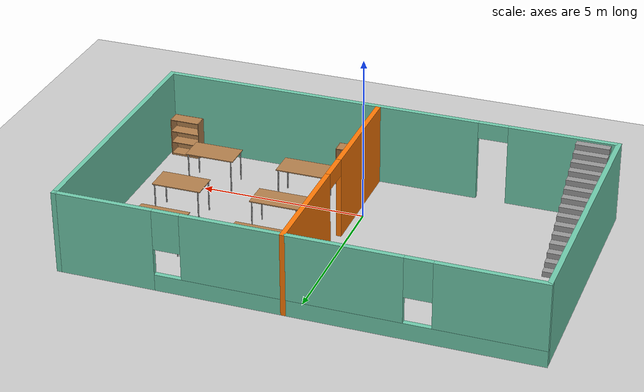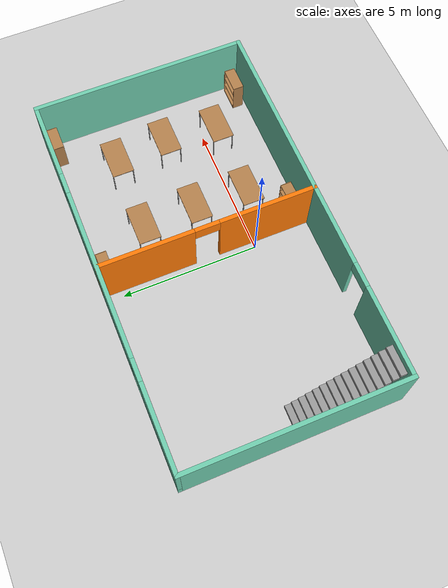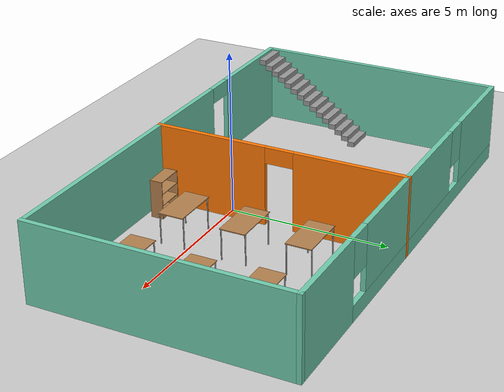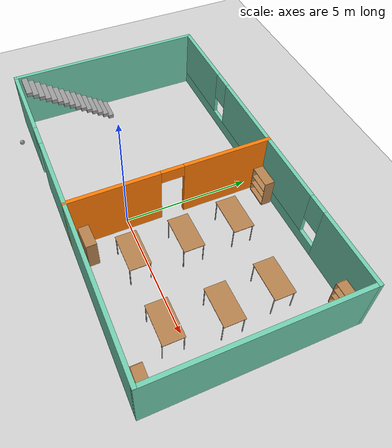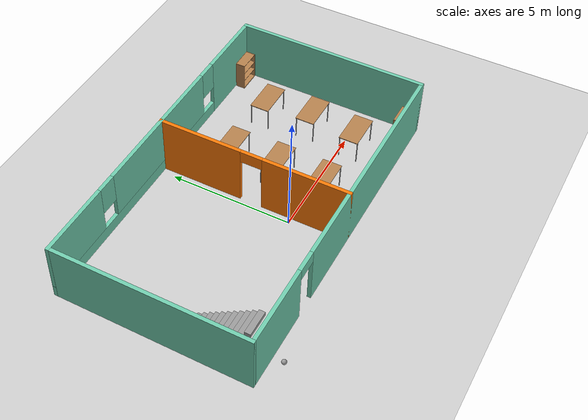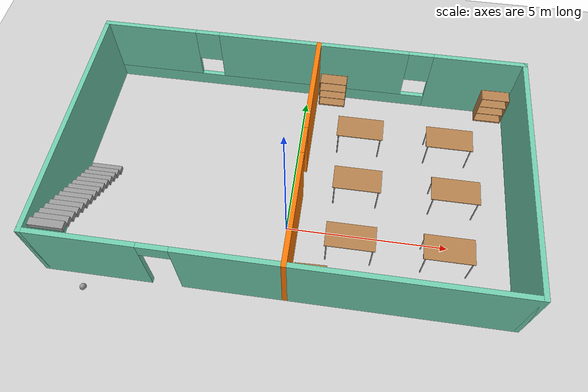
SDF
<sdf version="1.6">
 <world name="default">
  <light name="sun" type="directional">
   <pose>0 0 10 0 -0 0</pose>
   <diffuse>0.8 0.8 0.8 1</diffuse>
   <specular>0.2 0.2 0.2 1</specular>
   <attenuation>
    <range>1000</range>
    <constant>0.9</constant>
    <linear>0.01</linear>
    <quadratic>0.001</quadratic>
   </attenuation>
   <direction>-0.5 0.1 -0.9</direction>
  </light>
  <model name="ground_plane">
   <static>1</static>
   <link name="link">
    <collision name="collision">
     <geometry><plane><normal>0 0 1</normal><size>100 100</size></plane></geometry>
     <surface><friction><ode><mu>100</mu><mu2>50</mu2></ode></friction></surface>
    </collision>
    <visual name="visual">
     <cast_shadows>0</cast_shadows>
     <geometry><plane><normal>0 0 1</normal><size>100 100</size></plane></geometry>
     <material>
      <script><uri>file://media/materials/scripts/gazebo.material</uri><name>Gazebo/Grey</name></script>
     </material>
    </visual>
   </link>
  </model>
  <gravity>0 0 -9.8</gravity>
  <magnetic_field>6e-06 2.3e-05 -4.2e-05</magnetic_field>
  <atmosphere type="adiabatic"/>
  <physics name="default_physics" default="0" type="ode">
   <max_step_size>0.001</max_step_size>
   <real_time_factor>1</real_time_factor>
   <real_time_update_rate>1000</real_time_update_rate>
  </physics>
  <scene><ambient>0.4 0.4 0.4 1</ambient><background>0.7 0.7 0.7 1</background><shadows>1</shadows></scene>
  <audio><device>default</device></audio>
  <spherical_coordinates>
   <surface_model>EARTH_WGS84</surface_model>
   <latitude_deg>0</latitude_deg>
   <longitude_deg>0</longitude_deg>
   <elevation>0</elevation>
   <heading_deg>0</heading_deg>
  </spherical_coordinates>
  <model name="my_small_house">
   <pose>0.022588 1.69125 0 0 -0 0</pose>
   <link name="Stairs_0">
    <visual name="Stairs_0_Visual_0">
     <pose>-6.25421 -0.363102 0.083333 0 -0 0</pose>
     <geometry><box><size>1 0.233333 0.166667</size></box></geometry>
     <material>
      <script><uri>file://media/materials/scripts/gazebo.material</uri><name>Gazebo/Grey</name></script>
      <ambient>1 1 1 1</ambient>
     </material>
     <meta><layer>0</layer></meta>
    </visual>
    <collision name="Stairs_0_Collision_0">
     <geometry><box><size>1 0.233333 0.166667</size></box></geometry>
     <pose>-6.25421 -0.363102 0.083333 0 -0 0</pose>
    </collision>
    <visual name="Stairs_0_Visual_1">
     <pose>-6.25421 -0.596436 0.25 0 -0 0</pose>
     <geometry><box><size>1 0.233333 0.166667</size></box></geometry>
     <material>
      <script><uri>file://media/materials/scripts/gazebo.material</uri><name>Gazebo/Grey</name></script>
      <ambient>1 1 1 1</ambient>
     </material>
     <meta><layer>0</layer></meta>
    </visual>
    <collision name="Stairs_0_Collision_1">
     <geometry><box><size>1 0.233333 0.166667</size></box></geometry>
     <pose>-6.25421 -0.596436 0.25 0 -0 0</pose>
    </collision>
    <visual name="Stairs_0_Visual_2">
     <pose>-6.25421 -0.829769 0.416667 0 -0 0</pose>
     <geometry><box><size>1 0.233333 0.166667</size></box></geometry>
     <material>
      <script><uri>file://media/materials/scripts/gazebo.material</uri><name>Gazebo/Grey</name></script>
      <ambient>1 1 1 1</ambient>
     </material>
     <meta><layer>0</layer></meta>
    </visual>
    <collision name="Stairs_0_Collision_2">
     <geometry><box><size>1 0.233333 0.166667</size></box></geometry>
     <pose>-6.25421 -0.829769 0.416667 0 -0 0</pose>
    </collision>
    <visual name="Stairs_0_Visual_3">
     <pose>-6.25421 -1.0631 0.583333 0 -0 0</pose>
     <geometry><box><size>1 0.233333 0.166667</size></box></geometry>
     <material>
      <script><uri>file://media/materials/scripts/gazebo.material</uri><name>Gazebo/Grey</name></script>
      <ambient>1 1 1 1</ambient>
     </material>
     <meta><layer>0</layer></meta>
    </visual>
    <collision name="Stairs_0_Collision_3">
     <geometry><box><size>1 0.233333 0.166667</size></box></geometry>
     <pose>-6.25421 -1.0631 0.583333 0 -0 0</pose>
    </collision>
    <visual name="Stairs_0_Visual_4">
     <pose>-6.25421 -1.29644 0.75 0 -0 0</pose>
     <geometry><box><size>1 0.233333 0.166667</size></box></geometry>
     <material>
      <script><uri>file://media/materials/scripts/gazebo.material</uri><name>Gazebo/Grey</name></script>
      <ambient>1 1 1 1</ambient>
     </material>
     <meta><layer>0</layer></meta>
    </visual>
    <collision name="Stairs_0_Collision_4">
     <geometry><box><size>1 0.233333 0.166667</size></box></geometry>
     <pose>-6.25421 -1.29644 0.75 0 -0 0</pose>
    </collision>
    <visual name="Stairs_0_Visual_5">
     <pose>-6.25421 -1.52977 0.916667 0 -0 0</pose>
     <geometry><box><size>1 0.233333 0.166667</size></box></geometry>
     <material>
      <script><uri>file://media/materials/scripts/gazebo.material</uri><name>Gazebo/Grey</name></script>
      <ambient>1 1 1 1</ambient>
     </material>
     <meta><layer>0</layer></meta>
    </visual>
    <collision name="Stairs_0_Collision_5">
     <geometry><box><size>1 0.233333 0.166667</size></box></geometry>
     <pose>-6.25421 -1.52977 0.916667 0 -0 0</pose>
    </collision>
    <visual name="Stairs_0_Visual_6">
     <pose>-6.25421 -1.7631 1.08333 0 -0 0</pose>
     <geometry><box><size>1 0.233333 0.166667</size></box></geometry>
     <material>
      <script><uri>file://media/materials/scripts/gazebo.material</uri><name>Gazebo/Grey</name></script>
      <ambient>1 1 1 1</ambient>
     </material>
     <meta><layer>0</layer></meta>
    </visual>
    <collision name="Stairs_0_Collision_6">
     <geometry><box><size>1 0.233333 0.166667</size></box></geometry>
     <pose>-6.25421 -1.7631 1.08333 0 -0 0</pose>
    </collision>
    <visual name="Stairs_0_Visual_7">
     <pose>-6.25421 -1.99644 1.25 0 -0 0</pose>
     <geometry><box><size>1 0.233333 0.166667</size></box></geometry>
     <material>
      <script><uri>file://media/materials/scripts/gazebo.material</uri><name>Gazebo/Grey</name></script>
      <ambient>1 1 1 1</ambient>
     </material>
     <meta><layer>0</layer></meta>
    </visual>
    <collision name="Stairs_0_Collision_7">
     <geometry><box><size>1 0.233333 0.166667</size></box></geometry>
     <pose>-6.25421 -1.99644 1.25 0 -0 0</pose>
    </collision>
    <visual name="Stairs_0_Visual_8">
     <pose>-6.25421 -2.22977 1.41667 0 -0 0</pose>
     <geometry><box><size>1 0.233333 0.166667</size></box></geometry>
     <material>
      <script><uri>file://media/materials/scripts/gazebo.material</uri><name>Gazebo/Grey</name></script>
      <ambient>1 1 1 1</ambient>
     </material>
     <meta><layer>0</layer></meta>
    </visual>
    <collision name="Stairs_0_Collision_8">
     <geometry><box><size>1 0.233333 0.166667</size></box></geometry>
     <pose>-6.25421 -2.22977 1.41667 0 -0 0</pose>
    </collision>
    <visual name="Stairs_0_Visual_9">
     <pose>-6.25421 -2.4631 1.58333 0 -0 0</pose>
     <geometry><box><size>1 0.233333 0.166667</size></box></geometry>
     <material>
      <script><uri>file://media/materials/scripts/gazebo.material</uri><name>Gazebo/Grey</name></script>
      <ambient>1 1 1 1</ambient>
     </material>
     <meta><layer>0</layer></meta>
    </visual>
    <collision name="Stairs_0_Collision_9">
     <geometry><box><size>1 0.233333 0.166667</size></box></geometry>
     <pose>-6.25421 -2.4631 1.58333 0 -0 0</pose>
    </collision>
    <visual name="Stairs_0_Visual_10">
     <pose>-6.25421 -2.69644 1.75 0 -0 0</pose>
     <geometry><box><size>1 0.233333 0.166667</size></box></geometry>
     <material>
      <script><uri>file://media/materials/scripts/gazebo.material</uri><name>Gazebo/Grey</name></script>
      <ambient>1 1 1 1</ambient>
     </material>
     <meta><layer>0</layer></meta>
    </visual>
    <collision name="Stairs_0_Collision_10">
     <geometry><box><size>1 0.233333 0.166667</size></box></geometry>
     <pose>-6.25421 -2.69644 1.75 0 -0 0</pose>
    </collision>
    <visual name="Stairs_0_Visual_11">
     <pose>-6.25421 -2.92977 1.91667 0 -0 0</pose>
     <geometry><box><size>1 0.233333 0.166667</size></box></geometry>
     <material>
      <script><uri>file://media/materials/scripts/gazebo.material</uri><name>Gazebo/Grey</name></script>
      <ambient>1 1 1 1</ambient>
     </material>
     <meta><layer>0</layer></meta>
    </visual>
    <collision name="Stairs_0_Collision_11">
     <geometry><box><size>1 0.233333 0.166667</size></box></geometry>
     <pose>-6.25421 -2.92977 1.91667 0 -0 0</pose>
    </collision>
    <visual name="Stairs_0_Visual_12">
     <pose>-6.25421 -3.1631 2.08333 0 -0 0</pose>
     <geometry><box><size>1 0.233333 0.166667</size></box></geometry>
     <material>
      <script><uri>file://media/materials/scripts/gazebo.material</uri><name>Gazebo/Grey</name></script>
      <ambient>1 1 1 1</ambient>
     </material>
     <meta><layer>0</layer></meta>
    </visual>
    <collision name="Stairs_0_Collision_12">
     <geometry><box><size>1 0.233333 0.166667</size></box></geometry>
     <pose>-6.25421 -3.1631 2.08333 0 -0 0</pose>
    </collision>
    <visual name="Stairs_0_Visual_13">
     <pose>-6.25421 -3.39643 2.25 0 -0 0</pose>
     <geometry><box><size>1 0.233333 0.166667</size></box></geometry>
     <material>
      <script><uri>file://media/materials/scripts/gazebo.material</uri><name>Gazebo/Grey</name></script>
      <ambient>1 1 1 1</ambient>
     </material>
     <meta><layer>0</layer></meta>
    </visual>
    <collision name="Stairs_0_Collision_13">
     <geometry><box><size>1 0.233333 0.166667</size></box></geometry>
     <pose>-6.25421 -3.39643 2.25 0 -0 0</pose>
    </collision>
    <visual name="Stairs_0_Visual_14">
     <pose>-6.25421 -3.62977 2.41667 0 -0 0</pose>
     <geometry><box><size>1 0.233333 0.166667</size></box></geometry>
     <material>
      <script><uri>file://media/materials/scripts/gazebo.material</uri><name>Gazebo/Grey</name></script>
      <ambient>1 1 1 1</ambient>
     </material>
     <meta><layer>0</layer></meta>
    </visual>
    <collision name="Stairs_0_Collision_14">
     <geometry><box><size>1 0.233333 0.166667</size></box></geometry>
     <pose>-6.25421 -3.62977 2.41667 0 -0 0</pose>
    </collision>
   </link>
   <link name="Wall_0">
    <collision name="Wall_0_Collision">
     <geometry><box><size>8 0.15 2.5</size></box></geometry>
     <pose>0 0 1.25 0 -0 0</pose>
    </collision>
    <visual name="Wall_0_Visual">
     <pose>0 0 1.25 0 -0 0</pose>
     <geometry><box><size>8 0.15 2.5</size></box></geometry>
     <material>
      <script><uri>file://media/materials/scripts/gazebo.material</uri><name>Gazebo/Grey</name></script>
      <ambient>0.435294 0.796078 0.67451 1</ambient>
     </material>
     <meta><layer>0</layer></meta>
    </visual>
    <pose>-6.925 0 0 0 -0 -1.5708</pose>
   </link>
   <link name="Wall_1">
    <pose>0 -3.925 0 0 -0 0</pose>
    <visual name="Wall_1_Visual_0">
     <pose>-5.34862 0 1.25 0 -0 0</pose>
     <geometry><box><size>3.30277 0.15 2.5</size></box></geometry>
     <material>
      <script><uri>file://media/materials/scripts/gazebo.material</uri><name>Gazebo/Grey</name></script>
      <ambient>0.435294 0.796078 0.67451 1</ambient>
     </material>
     <meta><layer>0</layer></meta>
    </visual>
    <collision name="Wall_1_Collision_0">
     <geometry><box><size>3.30277 0.15 2.5</size></box></geometry>
     <pose>-5.34862 0 1.25 0 -0 0</pose>
    </collision>
    <visual name="Wall_1_Visual_1">
     <pose>2.10138 0 1.25 0 -0 0</pose>
     <geometry><box><size>9.79723 0.15 2.5</size></box></geometry>
     <material>
      <script><uri>file://media/materials/scripts/gazebo.material</uri><name>Gazebo/Grey</name></script>
      <ambient>0.435294 0.796078 0.67451 1</ambient>
     </material>
     <meta><layer>0</layer></meta>
    </visual>
    <collision name="Wall_1_Collision_1">
     <geometry><box><size>9.79723 0.15 2.5</size></box></geometry>
     <pose>2.10138 0 1.25 0 -0 0</pose>
    </collision>
    <visual name="Wall_1_Visual_2">
     <pose>-3.24723 0 2.25 0 -0 0</pose>
     <geometry><box><size>0.9 0.15 0.5</size></box></geometry>
     <material>
      <script><uri>file://media/materials/scripts/gazebo.material</uri><name>Gazebo/Grey</name></script>
      <ambient>0.435294 0.796078 0.67451 1</ambient>
     </material>
     <meta><layer>0</layer></meta>
    </visual>
    <collision name="Wall_1_Collision_2">
     <geometry><box><size>0.9 0.15 0.5</size></box></geometry>
     <pose>-3.24723 0 2.25 0 -0 0</pose>
    </collision>
   </link>
   <link name="Wall_2">
    <collision name="Wall_2_Collision">
     <geometry><box><size>8 0.15 2.5</size></box></geometry>
     <pose>0 0 1.25 0 -0 0</pose>
    </collision>
    <visual name="Wall_2_Visual">
     <pose>0 0 1.25 0 -0 0</pose>
     <geometry><box><size>8 0.15 2.5</size></box></geometry>
     <material>
      <script><uri>file://media/materials/scripts/gazebo.material</uri><name>Gazebo/Grey</name></script>
      <ambient>0.435294 0.796078 0.67451 1</ambient>
     </material>
     <meta><layer>0</layer></meta>
    </visual>
    <pose>6.925 0 0 0 -0 1.5708</pose>
   </link>
   <link name="Wall_3">
    <pose>0 3.925 0 0 -0 3.14159</pose>
    <visual name="Wall_3_Visual_0">
     <pose>-5.51128 0 1.25 0 -0 0</pose>
     <geometry><box><size>2.97744 0.15 2.5</size></box></geometry>
     <material>
      <script><uri>file://media/materials/scripts/gazebo.material</uri><name>Gazebo/Grey</name></script>
      <ambient>0.435294 0.796078 0.67451 1</ambient>
     </material>
     <meta><layer>0</layer></meta>
    </visual>
    <collision name="Wall_3_Collision_0">
     <geometry><box><size>2.97744 0.15 2.5</size></box></geometry>
     <pose>-5.51128 0 1.25 0 -0 0</pose>
    </collision>
    <visual name="Wall_3_Visual_1">
     <pose>1.48872 0 0.25 0 -0 0</pose>
     <geometry><box><size>11.0226 0.15 0.5</size></box></geometry>
     <material>
      <script><uri>file://media/materials/scripts/gazebo.material</uri><name>Gazebo/Grey</name></script>
      <ambient>0.435294 0.796078 0.67451 1</ambient>
     </material>
     <meta><layer>0</layer></meta>
    </visual>
    <collision name="Wall_3_Collision_1">
     <geometry><box><size>11.0226 0.15 0.5</size></box></geometry>
     <pose>1.48872 0 0.25 0 -0 0</pose>
    </collision>
    <visual name="Wall_3_Visual_2">
     <pose>-0.072009 0 1.5 0 -0 0</pose>
     <geometry><box><size>6.3011 0.15 2</size></box></geometry>
     <material>
      <script><uri>file://media/materials/scripts/gazebo.material</uri><name>Gazebo/Grey</name></script>
      <ambient>0.435294 0.796078 0.67451 1</ambient>
     </material>
     <meta><layer>0</layer></meta>
    </visual>
    <collision name="Wall_3_Collision_2">
     <geometry><box><size>6.3011 0.15 2</size></box></geometry>
     <pose>-0.072009 0 1.5 0 -0 0</pose>
    </collision>
    <visual name="Wall_3_Visual_3">
     <pose>5.43927 0 1.5 0 -0 0</pose>
     <geometry><box><size>3.12146 0.15 2</size></box></geometry>
     <material>
      <script><uri>file://media/materials/scripts/gazebo.material</uri><name>Gazebo/Grey</name></script>
      <ambient>0.435294 0.796078 0.67451 1</ambient>
     </material>
     <meta><layer>0</layer></meta>
    </visual>
    <collision name="Wall_3_Collision_3">
     <geometry><box><size>3.12146 0.15 2</size></box></geometry>
     <pose>5.43927 0 1.5 0 -0 0</pose>
    </collision>
    <visual name="Wall_3_Visual_4">
     <pose>-3.62256 0 1.9 0 -0 0</pose>
     <geometry><box><size>0.8 0.15 1.2</size></box></geometry>
     <material>
      <script><uri>file://media/materials/scripts/gazebo.material</uri><name>Gazebo/Grey</name></script>
      <ambient>0.435294 0.796078 0.67451 1</ambient>
     </material>
     <meta><layer>0</layer></meta>
    </visual>
    <collision name="Wall_3_Collision_4">
     <geometry><box><size>0.8 0.15 1.2</size></box></geometry>
     <pose>-3.62256 0 1.9 0 -0 0</pose>
    </collision>
    <visual name="Wall_3_Visual_5">
     <pose>3.47854 0 1.9 0 -0 0</pose>
     <geometry><box><size>0.8 0.15 1.2</size></box></geometry>
     <material>
      <script><uri>file://media/materials/scripts/gazebo.material</uri><name>Gazebo/Grey</name></script>
      <ambient>0.435294 0.796078 0.67451 1</ambient>
     </material>
     <meta><layer>0</layer></meta>
    </visual>
    <collision name="Wall_3_Collision_5">
     <geometry><box><size>0.8 0.15 1.2</size></box></geometry>
     <pose>3.47854 0 1.9 0 -0 0</pose>
    </collision>
   </link>
   <link name="Wall_5">
    <pose>0.268619 0 0 0 -0 -1.5708</pose>
    <visual name="Wall_5_Visual_0">
     <pose>-2.24453 0 1.25 0 -0 0</pose>
     <geometry><box><size>3.51094 0.15 2.5</size></box></geometry>
     <material>
      <script><uri>file://media/materials/scripts/gazebo.material</uri><name>Gazebo/Grey</name></script>
      <ambient>0.996078 0.47451 0.0196078 1</ambient>
     </material>
     <meta><layer>0</layer></meta>
    </visual>
    <collision name="Wall_5_Collision_0">
     <geometry><box><size>3.51094 0.15 2.5</size></box></geometry>
     <pose>-2.24453 0 1.25 0 -0 0</pose>
    </collision>
    <visual name="Wall_5_Visual_1">
     <pose>2.20547 0 1.25 0 -0 0</pose>
     <geometry><box><size>3.58906 0.15 2.5</size></box></geometry>
     <material>
      <script><uri>file://media/materials/scripts/gazebo.material</uri><name>Gazebo/Grey</name></script>
      <ambient>0.996078 0.47451 0.0196078 1</ambient>
     </material>
     <meta><layer>0</layer></meta>
    </visual>
    <collision name="Wall_5_Collision_1">
     <geometry><box><size>3.58906 0.15 2.5</size></box></geometry>
     <pose>2.20547 0 1.25 0 -0 0</pose>
    </collision>
    <visual name="Wall_5_Visual_2">
     <pose>-0.039058 0 2.25 0 -0 0</pose>
     <geometry><box><size>0.9 0.15 0.5</size></box></geometry>
     <material>
      <script><uri>file://media/materials/scripts/gazebo.material</uri><name>Gazebo/Grey</name></script>
      <ambient>0.996078 0.47451 0.0196078 1</ambient>
     </material>
     <meta><layer>0</layer></meta>
    </visual>
    <collision name="Wall_5_Collision_2">
     <geometry><box><size>0.9 0.15 0.5</size></box></geometry>
     <pose>-0.039058 0 2.25 0 -0 0</pose>
    </collision>
   </link>
   <static>1</static>
  </model>
  <model name="room2">
   <model name="bookshelf">
    <static>1</static>
    <link name="link">
     <inertial><mass>1</mass></inertial>
     <collision name="back">
      <pose>0 0.005 0.6 0 -0 0</pose>
      <geometry><box><size>0.9 0.01 1.2</size></box></geometry>
     </collision>
     <visual name="visual1">
      <pose>0 0.005 0.6 0 -0 0</pose>
      <geometry><box><size>0.9 0.01 1.2</size></box></geometry>
      <material>
       <script><uri>file://media/materials/scripts/gazebo.material</uri><name>Gazebo/Wood</name></script>
      </material>
     </visual>
     <collision name="left_side">
      <pose>0.45 -0.195 0.6 0 -0 0</pose>
      <geometry><box><size>0.02 0.4 1.2</size></box></geometry>
     </collision>
     <visual name="visual2">
      <pose>0.45 -0.195 0.6 0 -0 0</pose>
      <geometry><box><size>0.02 0.4 1.2</size></box></geometry>
      <material>
       <script><uri>file://media/materials/scripts/gazebo.material</uri><name>Gazebo/Wood</name></script>
      </material>
     </visual>
     <collision name="right_side">
      <pose>-0.45 -0.195 0.6 0 -0 0</pose>
      <geometry><box><size>0.02 0.4 1.2</size></box></geometry>
     </collision>
     <visual name="visual3">
      <pose>-0.45 -0.195 0.6 0 -0 0</pose>
      <geometry><box><size>0.02 0.4 1.2</size></box></geometry>
      <material>
       <script><uri>file://media/materials/scripts/gazebo.material</uri><name>Gazebo/Wood</name></script>
      </material>
     </visual>
     <collision name="bottom">
      <pose>0 -0.195 0.03 0 -0 0</pose>
      <geometry><box><size>0.88 0.4 0.06</size></box></geometry>
     </collision>
     <visual name="visual4">
      <pose>0 -0.195 0.03 0 -0 0</pose>
      <geometry><box><size>0.88 0.4 0.06</size></box></geometry>
      <material>
       <script><uri>file://media/materials/scripts/gazebo.material</uri><name>Gazebo/Wood</name></script>
      </material>
     </visual>
     <collision name="top">
      <pose>0 -0.195 1.19 0 -0 0</pose>
      <geometry><box><size>0.88 0.4 0.02</size></box></geometry>
     </collision>
     <visual name="visual5">
      <pose>0 -0.195 1.19 0 -0 0</pose>
      <geometry><box><size>0.88 0.4 0.02</size></box></geometry>
      <material>
       <script><uri>file://media/materials/scripts/gazebo.material</uri><name>Gazebo/Wood</name></script>
      </material>
     </visual>
     <collision name="low_shelf">
      <pose>0 -0.195 0.43 0 -0 0</pose>
      <geometry><box><size>0.88 0.4 0.02</size></box></geometry>
     </collision>
     <visual name="visual6">
      <pose>0 -0.195 0.43 0 -0 0</pose>
      <geometry><box><size>0.88 0.4 0.02</size></box></geometry>
      <material>
       <script><uri>file://media/materials/scripts/gazebo.material</uri><name>Gazebo/Wood</name></script>
      </material>
     </visual>
     <collision name="high_shelf">
      <pose>0 -0.195 0.8 0 -0 0</pose>
      <geometry><box><size>0.88 0.4 0.02</size></box></geometry>
     </collision>
     <visual name="visual7">
      <pose>0 -0.195 0.8 0 -0 0</pose>
      <geometry><box><size>0.88 0.4 0.02</size></box></geometry>
      <material>
       <script><uri>file://media/materials/scripts/gazebo.material</uri><name>Gazebo/Wood</name></script>
      </material>
     </visual>
    </link>
    <pose>2.83384 3.91449 -0.000271 0 -0 0</pose>
   </model>
   <model name="bookshelf_0">
    <static>1</static>
    <link name="link">
     <inertial><mass>1</mass></inertial>
     <collision name="back">
      <pose>0 0.005 0.6 0 -0 0</pose>
      <geometry><box><size>0.9 0.01 1.2</size></box></geometry>
     </collision>
     <visual name="visual1">
      <pose>0 0.005 0.6 0 -0 0</pose>
      <geometry><box><size>0.9 0.01 1.2</size></box></geometry>
      <material>
       <script><uri>file://media/materials/scripts/gazebo.material</uri><name>Gazebo/Wood</name></script>
      </material>
     </visual>
     <collision name="left_side">
      <pose>0.45 -0.195 0.6 0 -0 0</pose>
      <geometry><box><size>0.02 0.4 1.2</size></box></geometry>
     </collision>
     <visual name="visual2">
      <pose>0.45 -0.195 0.6 0 -0 0</pose>
      <geometry><box><size>0.02 0.4 1.2</size></box></geometry>
      <material>
       <script><uri>file://media/materials/scripts/gazebo.material</uri><name>Gazebo/Wood</name></script>
      </material>
     </visual>
     <collision name="right_side">
      <pose>-0.45 -0.195 0.6 0 -0 0</pose>
      <geometry><box><size>0.02 0.4 1.2</size></box></geometry>
     </collision>
     <visual name="visual3">
      <pose>-0.45 -0.195 0.6 0 -0 0</pose>
      <geometry><box><size>0.02 0.4 1.2</size></box></geometry>
      <material>
       <script><uri>file://media/materials/scripts/gazebo.material</uri><name>Gazebo/Wood</name></script>
      </material>
     </visual>
     <collision name="bottom">
      <pose>0 -0.195 0.03 0 -0 0</pose>
      <geometry><box><size>0.88 0.4 0.06</size></box></geometry>
     </collision>
     <visual name="visual4">
      <pose>0 -0.195 0.03 0 -0 0</pose>
      <geometry><box><size>0.88 0.4 0.06</size></box></geometry>
      <material>
       <script><uri>file://media/materials/scripts/gazebo.material</uri><name>Gazebo/Wood</name></script>
      </material>
     </visual>
     <collision name="top">
      <pose>0 -0.195 1.19 0 -0 0</pose>
      <geometry><box><size>0.88 0.4 0.02</size></box></geometry>
     </collision>
     <visual name="visual5">
      <pose>0 -0.195 1.19 0 -0 0</pose>
      <geometry><box><size>0.88 0.4 0.02</size></box></geometry>
      <material>
       <script><uri>file://media/materials/scripts/gazebo.material</uri><name>Gazebo/Wood</name></script>
      </material>
     </visual>
     <collision name="low_shelf">
      <pose>0 -0.195 0.43 0 -0 0</pose>
      <geometry><box><size>0.88 0.4 0.02</size></box></geometry>
     </collision>
     <visual name="visual6">
      <pose>0 -0.195 0.43 0 -0 0</pose>
      <geometry><box><size>0.88 0.4 0.02</size></box></geometry>
      <material>
       <script><uri>file://media/materials/scripts/gazebo.material</uri><name>Gazebo/Wood</name></script>
      </material>
     </visual>
     <collision name="high_shelf">
      <pose>0 -0.195 0.8 0 -0 0</pose>
      <geometry><box><size>0.88 0.4 0.02</size></box></geometry>
     </collision>
     <visual name="visual7">
      <pose>0 -0.195 0.8 0 -0 0</pose>
      <geometry><box><size>0.88 0.4 0.02</size></box></geometry>
      <material>
       <script><uri>file://media/materials/scripts/gazebo.material</uri><name>Gazebo/Wood</name></script>
      </material>
     </visual>
    </link>
    <pose>-2.64723 3.87983 -0.000271 0 -0 0</pose>
   </model>
   <model name="bookshelf_1">
    <static>1</static>
    <link name="link">
     <inertial><mass>1</mass></inertial>
     <collision name="back">
      <pose>0 0.005 0.6 0 -0 0</pose>
      <geometry><box><size>0.9 0.01 1.2</size></box></geometry>
     </collision>
     <visual name="visual1">
      <pose>0 0.005 0.6 0 -0 0</pose>
      <geometry><box><size>0.9 0.01 1.2</size></box></geometry>
      <material>
       <script><uri>file://media/materials/scripts/gazebo.material</uri><name>Gazebo/Wood</name></script>
      </material>
     </visual>
     <collision name="left_side">
      <pose>0.45 -0.195 0.6 0 -0 0</pose>
      <geometry><box><size>0.02 0.4 1.2</size></box></geometry>
     </collision>
     <visual name="visual2">
      <pose>0.45 -0.195 0.6 0 -0 0</pose>
      <geometry><box><size>0.02 0.4 1.2</size></box></geometry>
      <material>
       <script><uri>file://media/materials/scripts/gazebo.material</uri><name>Gazebo/Wood</name></script>
      </material>
     </visual>
     <collision name="right_side">
      <pose>-0.45 -0.195 0.6 0 -0 0</pose>
      <geometry><box><size>0.02 0.4 1.2</size></box></geometry>
     </collision>
     <visual name="visual3">
      <pose>-0.45 -0.195 0.6 0 -0 0</pose>
      <geometry><box><size>0.02 0.4 1.2</size></box></geometry>
      <material>
       <script><uri>file://media/materials/scripts/gazebo.material</uri><name>Gazebo/Wood</name></script>
      </material>
     </visual>
     <collision name="bottom">
      <pose>0 -0.195 0.03 0 -0 0</pose>
      <geometry><box><size>0.88 0.4 0.06</size></box></geometry>
     </collision>
     <visual name="visual4">
      <pose>0 -0.195 0.03 0 -0 0</pose>
      <geometry><box><size>0.88 0.4 0.06</size></box></geometry>
      <material>
       <script><uri>file://media/materials/scripts/gazebo.material</uri><name>Gazebo/Wood</name></script>
      </material>
     </visual>
     <collision name="top">
      <pose>0 -0.195 1.19 0 -0 0</pose>
      <geometry><box><size>0.88 0.4 0.02</size></box></geometry>
     </collision>
     <visual name="visual5">
      <pose>0 -0.195 1.19 0 -0 0</pose>
      <geometry><box><size>0.88 0.4 0.02</size></box></geometry>
      <material>
       <script><uri>file://media/materials/scripts/gazebo.material</uri><name>Gazebo/Wood</name></script>
      </material>
     </visual>
     <collision name="low_shelf">
      <pose>0 -0.195 0.43 0 -0 0</pose>
      <geometry><box><size>0.88 0.4 0.02</size></box></geometry>
     </collision>
     <visual name="visual6">
      <pose>0 -0.195 0.43 0 -0 0</pose>
      <geometry><box><size>0.88 0.4 0.02</size></box></geometry>
      <material>
       <script><uri>file://media/materials/scripts/gazebo.material</uri><name>Gazebo/Wood</name></script>
      </material>
     </visual>
     <collision name="high_shelf">
      <pose>0 -0.195 0.8 0 -0 0</pose>
      <geometry><box><size>0.88 0.4 0.02</size></box></geometry>
     </collision>
     <visual name="visual7">
      <pose>0 -0.195 0.8 0 -0 0</pose>
      <geometry><box><size>0.88 0.4 0.02</size></box></geometry>
      <material>
       <script><uri>file://media/materials/scripts/gazebo.material</uri><name>Gazebo/Wood</name></script>
      </material>
     </visual>
    </link>
    <pose>2.81028 -3.6314 -0.000271 0 -0 3.13704</pose>
   </model>
   <model name="bookshelf_2">
    <static>1</static>
    <link name="link">
     <inertial><mass>1</mass></inertial>
     <collision name="back">
      <pose>0 0.005 0.6 0 -0 0</pose>
      <geometry><box><size>0.9 0.01 1.2</size></box></geometry>
     </collision>
     <visual name="visual1">
      <pose>0 0.005 0.6 0 -0 0</pose>
      <geometry><box><size>0.9 0.01 1.2</size></box></geometry>
      <material>
       <script><uri>file://media/materials/scripts/gazebo.material</uri><name>Gazebo/Wood</name></script>
      </material>
     </visual>
     <collision name="left_side">
      <pose>0.45 -0.195 0.6 0 -0 0</pose>
      <geometry><box><size>0.02 0.4 1.2</size></box></geometry>
     </collision>
     <visual name="visual2">
      <pose>0.45 -0.195 0.6 0 -0 0</pose>
      <geometry><box><size>0.02 0.4 1.2</size></box></geometry>
      <material>
       <script><uri>file://media/materials/scripts/gazebo.material</uri><name>Gazebo/Wood</name></script>
      </material>
     </visual>
     <collision name="right_side">
      <pose>-0.45 -0.195 0.6 0 -0 0</pose>
      <geometry><box><size>0.02 0.4 1.2</size></box></geometry>
     </collision>
     <visual name="visual3">
      <pose>-0.45 -0.195 0.6 0 -0 0</pose>
      <geometry><box><size>0.02 0.4 1.2</size></box></geometry>
      <material>
       <script><uri>file://media/materials/scripts/gazebo.material</uri><name>Gazebo/Wood</name></script>
      </material>
     </visual>
     <collision name="bottom">
      <pose>0 -0.195 0.03 0 -0 0</pose>
      <geometry><box><size>0.88 0.4 0.06</size></box></geometry>
     </collision>
     <visual name="visual4">
      <pose>0 -0.195 0.03 0 -0 0</pose>
      <geometry><box><size>0.88 0.4 0.06</size></box></geometry>
      <material>
       <script><uri>file://media/materials/scripts/gazebo.material</uri><name>Gazebo/Wood</name></script>
      </material>
     </visual>
     <collision name="top">
      <pose>0 -0.195 1.19 0 -0 0</pose>
      <geometry><box><size>0.88 0.4 0.02</size></box></geometry>
     </collision>
     <visual name="visual5">
      <pose>0 -0.195 1.19 0 -0 0</pose>
      <geometry><box><size>0.88 0.4 0.02</size></box></geometry>
      <material>
       <script><uri>file://media/materials/scripts/gazebo.material</uri><name>Gazebo/Wood</name></script>
      </material>
     </visual>
     <collision name="low_shelf">
      <pose>0 -0.195 0.43 0 -0 0</pose>
      <geometry><box><size>0.88 0.4 0.02</size></box></geometry>
     </collision>
     <visual name="visual6">
      <pose>0 -0.195 0.43 0 -0 0</pose>
      <geometry><box><size>0.88 0.4 0.02</size></box></geometry>
      <material>
       <script><uri>file://media/materials/scripts/gazebo.material</uri><name>Gazebo/Wood</name></script>
      </material>
     </visual>
     <collision name="high_shelf">
      <pose>0 -0.195 0.8 0 -0 0</pose>
      <geometry><box><size>0.88 0.4 0.02</size></box></geometry>
     </collision>
     <visual name="visual7">
      <pose>0 -0.195 0.8 0 -0 0</pose>
      <geometry><box><size>0.88 0.4 0.02</size></box></geometry>
      <material>
       <script><uri>file://media/materials/scripts/gazebo.material</uri><name>Gazebo/Wood</name></script>
      </material>
     </visual>
    </link>
    <pose>-2.57339 -3.57221 0.002437 0 0 -3.11122</pose>
   </model>
   <model name="table">
    <static>1</static>
    <link name="link">
     <collision name="surface">
      <pose>0 0 1 0 -0 0</pose>
      <geometry><box><size>1.5 0.8 0.03</size></box></geometry>
      <surface><friction><ode><mu>0.6</mu><mu2>0.6</mu2></ode></friction></surface>
     </collision>
     <visual name="visual1">
      <pose>0 0 1 0 -0 0</pose>
      <geometry><box><size>1.5 0.8 0.03</size></box></geometry>
      <material>
       <script><uri>file://media/materials/scripts/gazebo.material</uri><name>Gazebo/Wood</name></script>
      </material>
     </visual>
     <collision name="front_left_leg">
      <pose>0.68 0.38 0.5 0 -0 0</pose>
      <geometry><cylinder><radius>0.02</radius><length>1</length></cylinder></geometry>
     </collision>
     <visual name="front_left_leg">
      <pose>0.68 0.38 0.5 0 -0 0</pose>
      <geometry><cylinder><radius>0.02</radius><length>1</length></cylinder></geometry>
      <material>
       <script><uri>file://media/materials/scripts/gazebo.material</uri><name>Gazebo/Grey</name></script>
      </material>
     </visual>
     <collision name="front_right_leg">
      <pose>0.68 -0.38 0.5 0 -0 0</pose>
      <geometry><cylinder><radius>0.02</radius><length>1</length></cylinder></geometry>
     </collision>
     <visual name="front_right_leg">
      <pose>0.68 -0.38 0.5 0 -0 0</pose>
      <geometry><cylinder><radius>0.02</radius><length>1</length></cylinder></geometry>
      <material>
       <script><uri>file://media/materials/scripts/gazebo.material</uri><name>Gazebo/Grey</name></script>
      </material>
     </visual>
     <collision name="back_right_leg">
      <pose>-0.68 -0.38 0.5 0 -0 0</pose>
      <geometry><cylinder><radius>0.02</radius><length>1</length></cylinder></geometry>
     </collision>
     <visual name="back_right_leg">
      <pose>-0.68 -0.38 0.5 0 -0 0</pose>
      <geometry><cylinder><radius>0.02</radius><length>1</length></cylinder></geometry>
      <material>
       <script><uri>file://media/materials/scripts/gazebo.material</uri><name>Gazebo/Grey</name></script>
      </material>
     </visual>
     <collision name="back_left_leg">
      <pose>-0.68 0.38 0.5 0 -0 0</pose>
      <geometry><cylinder><radius>0.02</radius><length>1</length></cylinder></geometry>
     </collision>
     <visual name="back_left_leg">
      <pose>-0.68 0.38 0.5 0 -0 0</pose>
      <geometry><cylinder><radius>0.02</radius><length>1</length></cylinder></geometry>
      <material>
       <script><uri>file://media/materials/scripts/gazebo.material</uri><name>Gazebo/Grey</name></script>
      </material>
     </visual>
    </link>
    <pose>1.32961 1.85544 -0.000271 0 -0 0</pose>
   </model>
   <model name="table_0">
    <static>1</static>
    <link name="link">
     <collision name="surface">
      <pose>0 0 1 0 -0 0</pose>
      <geometry><box><size>1.5 0.8 0.03</size></box></geometry>
      <surface><friction><ode><mu>0.6</mu><mu2>0.6</mu2></ode></friction></surface>
     </collision>
     <visual name="visual1">
      <pose>0 0 1 0 -0 0</pose>
      <geometry><box><size>1.5 0.8 0.03</size></box></geometry>
      <material>
       <script><uri>file://media/materials/scripts/gazebo.material</uri><name>Gazebo/Wood</name></script>
      </material>
     </visual>
     <collision name="front_left_leg">
      <pose>0.68 0.38 0.5 0 -0 0</pose>
      <geometry><cylinder><radius>0.02</radius><length>1</length></cylinder></geometry>
     </collision>
     <visual name="front_left_leg">
      <pose>0.68 0.38 0.5 0 -0 0</pose>
      <geometry><cylinder><radius>0.02</radius><length>1</length></cylinder></geometry>
      <material>
       <script><uri>file://media/materials/scripts/gazebo.material</uri><name>Gazebo/Grey</name></script>
      </material>
     </visual>
     <collision name="front_right_leg">
      <pose>0.68 -0.38 0.5 0 -0 0</pose>
      <geometry><cylinder><radius>0.02</radius><length>1</length></cylinder></geometry>
     </collision>
     <visual name="front_right_leg">
      <pose>0.68 -0.38 0.5 0 -0 0</pose>
      <geometry><cylinder><radius>0.02</radius><length>1</length></cylinder></geometry>
      <material>
       <script><uri>file://media/materials/scripts/gazebo.material</uri><name>Gazebo/Grey</name></script>
      </material>
     </visual>
     <collision name="back_right_leg">
      <pose>-0.68 -0.38 0.5 0 -0 0</pose>
      <geometry><cylinder><radius>0.02</radius><length>1</length></cylinder></geometry>
     </collision>
     <visual name="back_right_leg">
      <pose>-0.68 -0.38 0.5 0 -0 0</pose>
      <geometry><cylinder><radius>0.02</radius><length>1</length></cylinder></geometry>
      <material>
       <script><uri>file://media/materials/scripts/gazebo.material</uri><name>Gazebo/Grey</name></script>
      </material>
     </visual>
     <collision name="back_left_leg">
      <pose>-0.68 0.38 0.5 0 -0 0</pose>
      <geometry><cylinder><radius>0.02</radius><length>1</length></cylinder></geometry>
     </collision>
     <visual name="back_left_leg">
      <pose>-0.68 0.38 0.5 0 -0 0</pose>
      <geometry><cylinder><radius>0.02</radius><length>1</length></cylinder></geometry>
      <material>
       <script><uri>file://media/materials/scripts/gazebo.material</uri><name>Gazebo/Grey</name></script>
      </material>
     </visual>
    </link>
    <pose>1.52578 -0.085101 -0.000271 0 -0 0</pose>
   </model>
   <model name="table_1">
    <static>1</static>
    <link name="link">
     <collision name="surface">
      <pose>0 0 1 0 -0 0</pose>
      <geometry><box><size>1.5 0.8 0.03</size></box></geometry>
      <surface><friction><ode><mu>0.6</mu><mu2>0.6</mu2></ode></friction></surface>
     </collision>
     <visual name="visual1">
      <pose>0 0 1 0 -0 0</pose>
      <geometry><box><size>1.5 0.8 0.03</size></box></geometry>
      <material>
       <script><uri>file://media/materials/scripts/gazebo.material</uri><name>Gazebo/Wood</name></script>
      </material>
     </visual>
     <collision name="front_left_leg">
      <pose>0.68 0.38 0.5 0 -0 0</pose>
      <geometry><cylinder><radius>0.02</radius><length>1</length></cylinder></geometry>
     </collision>
     <visual name="front_left_leg">
      <pose>0.68 0.38 0.5 0 -0 0</pose>
      <geometry><cylinder><radius>0.02</radius><length>1</length></cylinder></geometry>
      <material>
       <script><uri>file://media/materials/scripts/gazebo.material</uri><name>Gazebo/Grey</name></script>
      </material>
     </visual>
     <collision name="front_right_leg">
      <pose>0.68 -0.38 0.5 0 -0 0</pose>
      <geometry><cylinder><radius>0.02</radius><length>1</length></cylinder></geometry>
     </collision>
     <visual name="front_right_leg">
      <pose>0.68 -0.38 0.5 0 -0 0</pose>
      <geometry><cylinder><radius>0.02</radius><length>1</length></cylinder></geometry>
      <material>
       <script><uri>file://media/materials/scripts/gazebo.material</uri><name>Gazebo/Grey</name></script>
      </material>
     </visual>
     <collision name="back_right_leg">
      <pose>-0.68 -0.38 0.5 0 -0 0</pose>
      <geometry><cylinder><radius>0.02</radius><length>1</length></cylinder></geometry>
     </collision>
     <visual name="back_right_leg">
      <pose>-0.68 -0.38 0.5 0 -0 0</pose>
      <geometry><cylinder><radius>0.02</radius><length>1</length></cylinder></geometry>
      <material>
       <script><uri>file://media/materials/scripts/gazebo.material</uri><name>Gazebo/Grey</name></script>
      </material>
     </visual>
     <collision name="back_left_leg">
      <pose>-0.68 0.38 0.5 0 -0 0</pose>
      <geometry><cylinder><radius>0.02</radius><length>1</length></cylinder></geometry>
     </collision>
     <visual name="back_left_leg">
      <pose>-0.68 0.38 0.5 0 -0 0</pose>
      <geometry><cylinder><radius>0.02</radius><length>1</length></cylinder></geometry>
      <material>
       <script><uri>file://media/materials/scripts/gazebo.material</uri><name>Gazebo/Grey</name></script>
      </material>
     </visual>
    </link>
    <pose>1.33648 -2.08741 -0.000271 0 -0 0</pose>
   </model>
   <model name="table_2">
    <static>1</static>
    <link name="link">
     <collision name="surface">
      <pose>0 0 1 0 -0 0</pose>
      <geometry><box><size>1.5 0.8 0.03</size></box></geometry>
      <surface><friction><ode><mu>0.6</mu><mu2>0.6</mu2></ode></friction></surface>
     </collision>
     <visual name="visual1">
      <pose>0 0 1 0 -0 0</pose>
      <geometry><box><size>1.5 0.8 0.03</size></box></geometry>
      <material>
       <script><uri>file://media/materials/scripts/gazebo.material</uri><name>Gazebo/Wood</name></script>
      </material>
     </visual>
     <collision name="front_left_leg">
      <pose>0.68 0.38 0.5 0 -0 0</pose>
      <geometry><cylinder><radius>0.02</radius><length>1</length></cylinder></geometry>
     </collision>
     <visual name="front_left_leg">
      <pose>0.68 0.38 0.5 0 -0 0</pose>
      <geometry><cylinder><radius>0.02</radius><length>1</length></cylinder></geometry>
      <material>
       <script><uri>file://media/materials/scripts/gazebo.material</uri><name>Gazebo/Grey</name></script>
      </material>
     </visual>
     <collision name="front_right_leg">
      <pose>0.68 -0.38 0.5 0 -0 0</pose>
      <geometry><cylinder><radius>0.02</radius><length>1</length></cylinder></geometry>
     </collision>
     <visual name="front_right_leg">
      <pose>0.68 -0.38 0.5 0 -0 0</pose>
      <geometry><cylinder><radius>0.02</radius><length>1</length></cylinder></geometry>
      <material>
       <script><uri>file://media/materials/scripts/gazebo.material</uri><name>Gazebo/Grey</name></script>
      </material>
     </visual>
     <collision name="back_right_leg">
      <pose>-0.68 -0.38 0.5 0 -0 0</pose>
      <geometry><cylinder><radius>0.02</radius><length>1</length></cylinder></geometry>
     </collision>
     <visual name="back_right_leg">
      <pose>-0.68 -0.38 0.5 0 -0 0</pose>
      <geometry><cylinder><radius>0.02</radius><length>1</length></cylinder></geometry>
      <material>
       <script><uri>file://media/materials/scripts/gazebo.material</uri><name>Gazebo/Grey</name></script>
      </material>
     </visual>
     <collision name="back_left_leg">
      <pose>-0.68 0.38 0.5 0 -0 0</pose>
      <geometry><cylinder><radius>0.02</radius><length>1</length></cylinder></geometry>
     </collision>
     <visual name="back_left_leg">
      <pose>-0.68 0.38 0.5 0 -0 0</pose>
      <geometry><cylinder><radius>0.02</radius><length>1</length></cylinder></geometry>
      <material>
       <script><uri>file://media/materials/scripts/gazebo.material</uri><name>Gazebo/Grey</name></script>
      </material>
     </visual>
    </link>
    <pose>-1.57346 1.88936 -0.000271 0 -0 0</pose>
   </model>
   <model name="table_3">
    <static>1</static>
    <link name="link">
     <collision name="surface">
      <pose>0 0 1 0 -0 0</pose>
      <geometry><box><size>1.5 0.8 0.03</size></box></geometry>
      <surface><friction><ode><mu>0.6</mu><mu2>0.6</mu2></ode></friction></surface>
     </collision>
     <visual name="visual1">
      <pose>0 0 1 0 -0 0</pose>
      <geometry><box><size>1.5 0.8 0.03</size></box></geometry>
      <material>
       <script><uri>file://media/materials/scripts/gazebo.material</uri><name>Gazebo/Wood</name></script>
      </material>
     </visual>
     <collision name="front_left_leg">
      <pose>0.68 0.38 0.5 0 -0 0</pose>
      <geometry><cylinder><radius>0.02</radius><length>1</length></cylinder></geometry>
     </collision>
     <visual name="front_left_leg">
      <pose>0.68 0.38 0.5 0 -0 0</pose>
      <geometry><cylinder><radius>0.02</radius><length>1</length></cylinder></geometry>
      <material>
       <script><uri>file://media/materials/scripts/gazebo.material</uri><name>Gazebo/Grey</name></script>
      </material>
     </visual>
     <collision name="front_right_leg">
      <pose>0.68 -0.38 0.5 0 -0 0</pose>
      <geometry><cylinder><radius>0.02</radius><length>1</length></cylinder></geometry>
     </collision>
     <visual name="front_right_leg">
      <pose>0.68 -0.38 0.5 0 -0 0</pose>
      <geometry><cylinder><radius>0.02</radius><length>1</length></cylinder></geometry>
      <material>
       <script><uri>file://media/materials/scripts/gazebo.material</uri><name>Gazebo/Grey</name></script>
      </material>
     </visual>
     <collision name="back_right_leg">
      <pose>-0.68 -0.38 0.5 0 -0 0</pose>
      <geometry><cylinder><radius>0.02</radius><length>1</length></cylinder></geometry>
     </collision>
     <visual name="back_right_leg">
      <pose>-0.68 -0.38 0.5 0 -0 0</pose>
      <geometry><cylinder><radius>0.02</radius><length>1</length></cylinder></geometry>
      <material>
       <script><uri>file://media/materials/scripts/gazebo.material</uri><name>Gazebo/Grey</name></script>
      </material>
     </visual>
     <collision name="back_left_leg">
      <pose>-0.68 0.38 0.5 0 -0 0</pose>
      <geometry><cylinder><radius>0.02</radius><length>1</length></cylinder></geometry>
     </collision>
     <visual name="back_left_leg">
      <pose>-0.68 0.38 0.5 0 -0 0</pose>
      <geometry><cylinder><radius>0.02</radius><length>1</length></cylinder></geometry>
      <material>
       <script><uri>file://media/materials/scripts/gazebo.material</uri><name>Gazebo/Grey</name></script>
      </material>
     </visual>
    </link>
    <pose>-1.5401 -2.07459 -0.000271 0 -0 0</pose>
   </model>
   <model name="table_4">
    <static>1</static>
    <link name="link">
     <collision name="surface">
      <pose>0 0 1 0 -0 0</pose>
      <geometry><box><size>1.5 0.8 0.03</size></box></geometry>
      <surface><friction><ode><mu>0.6</mu><mu2>0.6</mu2></ode></friction></surface>
     </collision>
     <visual name="visual1">
      <pose>0 0 1 0 -0 0</pose>
      <geometry><box><size>1.5 0.8 0.03</size></box></geometry>
      <material>
       <script><uri>file://media/materials/scripts/gazebo.material</uri><name>Gazebo/Wood</name></script>
      </material>
     </visual>
     <collision name="front_left_leg">
      <pose>0.68 0.38 0.5 0 -0 0</pose>
      <geometry><cylinder><radius>0.02</radius><length>1</length></cylinder></geometry>
     </collision>
     <visual name="front_left_leg">
      <pose>0.68 0.38 0.5 0 -0 0</pose>
      <geometry><cylinder><radius>0.02</radius><length>1</length></cylinder></geometry>
      <material>
       <script><uri>file://media/materials/scripts/gazebo.material</uri><name>Gazebo/Grey</name></script>
      </material>
     </visual>
     <collision name="front_right_leg">
      <pose>0.68 -0.38 0.5 0 -0 0</pose>
      <geometry><cylinder><radius>0.02</radius><length>1</length></cylinder></geometry>
     </collision>
     <visual name="front_right_leg">
      <pose>0.68 -0.38 0.5 0 -0 0</pose>
      <geometry><cylinder><radius>0.02</radius><length>1</length></cylinder></geometry>
      <material>
       <script><uri>file://media/materials/scripts/gazebo.material</uri><name>Gazebo/Grey</name></script>
      </material>
     </visual>
     <collision name="back_right_leg">
      <pose>-0.68 -0.38 0.5 0 -0 0</pose>
      <geometry><cylinder><radius>0.02</radius><length>1</length></cylinder></geometry>
     </collision>
     <visual name="back_right_leg">
      <pose>-0.68 -0.38 0.5 0 -0 0</pose>
      <geometry><cylinder><radius>0.02</radius><length>1</length></cylinder></geometry>
      <material>
       <script><uri>file://media/materials/scripts/gazebo.material</uri><name>Gazebo/Grey</name></script>
      </material>
     </visual>
     <collision name="back_left_leg">
      <pose>-0.68 0.38 0.5 0 -0 0</pose>
      <geometry><cylinder><radius>0.02</radius><length>1</length></cylinder></geometry>
     </collision>
     <visual name="back_left_leg">
      <pose>-0.68 0.38 0.5 0 -0 0</pose>
      <geometry><cylinder><radius>0.02</radius><length>1</length></cylinder></geometry>
      <material>
       <script><uri>file://media/materials/scripts/gazebo.material</uri><name>Gazebo/Grey</name></script>
      </material>
     </visual>
    </link>
    <pose>-1.50182 -0.08843 -0.000271 0 -0 0</pose>
   </model>
   <static>0</static>
   <pose>3.53145 1.60343 0.000271 0 -0 0</pose>
  </model>
  <model name="white_ball">
   <link name="link_0">
    <inertial>
     <mass>1</mass>
     <inertia><ixx>0.1</ixx><ixy>0</ixy><ixz>0</ixz><iyy>0.1</iyy><iyz>0</iyz><izz>0.1</izz></inertia>
    </inertial>
    <visual name="visual">
     <geometry><sphere><radius>0.1</radius></sphere></geometry>
     <material>
      <lighting>1</lighting>
      <script><uri>file://media/materials/scripts/gazebo.material</uri><name>Gazebo/Grey</name></script>
      <shader type="vertex"><normal_map>__default__</normal_map></shader>
      <ambient>1 1 1 1</ambient>
      <diffuse>1 1 1 1</diffuse>
      <specular>1 1 1 1</specular>
      <emissive>1 1 1 1</emissive>
     </material>
    </visual>
    <collision name="collision">
     <geometry><sphere><radius>0.1</radius></sphere></geometry>
     <surface>
      <friction>
       <ode><mu>1</mu><mu2>1</mu2><fdir1>0 0 0</fdir1><slip1>0</slip1><slip2>0</slip2></ode>
       <torsional>
        <coefficient>1</coefficient>
        <patch_radius>0</patch_radius>
        <surface_radius>0</surface_radius>
        <use_patch_radius>1</use_patch_radius>
        <ode><slip>0</slip></ode>
       </torsional>
      </friction>
      <bounce><restitution_coefficient>0</restitution_coefficient><threshold>1e+06</threshold></bounce>
      <contact>
       <collide_without_contact>0</collide_without_contact>
       <collide_without_contact_bitmask>1</collide_without_contact_bitmask>
       <collide_bitmask>1</collide_bitmask>
       <ode>
        <soft_cfm>0</soft_cfm>
        <soft_erp>0.2</soft_erp>
        <kp>1e+13</kp>
        <kd>1</kd>
        <max_vel>0.01</max_vel>
        <min_depth>0</min_depth>
       </ode>
       <bullet>
        <split_impulse>1</split_impulse>
        <split_impulse_penetration_threshold>-0.01</split_impulse_penetration_threshold>
        <soft_cfm>0</soft_cfm>
        <soft_erp>0.2</soft_erp>
        <kp>1e+13</kp>
        <kd>1</kd>
       </bullet>
      </contact>
     </surface>
    </collision>
   </link>
   <static>0</static>
   <pose>-5.65682 -2.74951 0.1 0 -0 0</pose>
  </model>
 </world>
</sdf>
